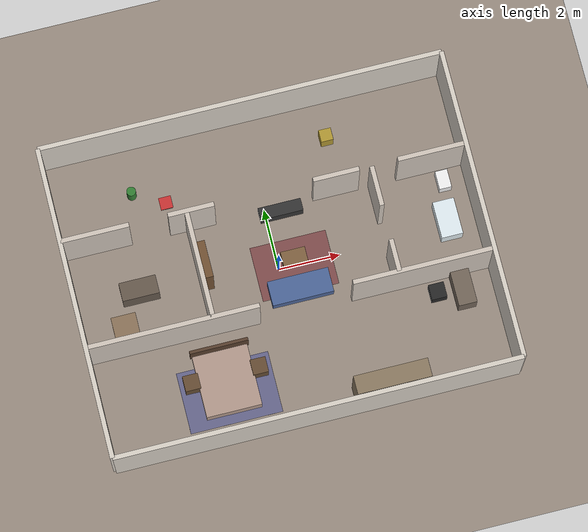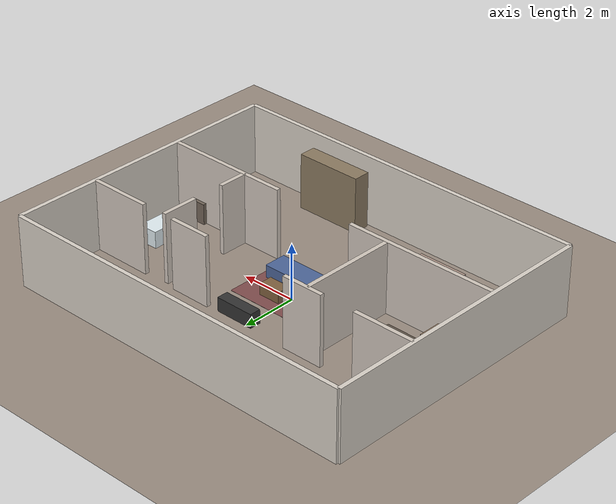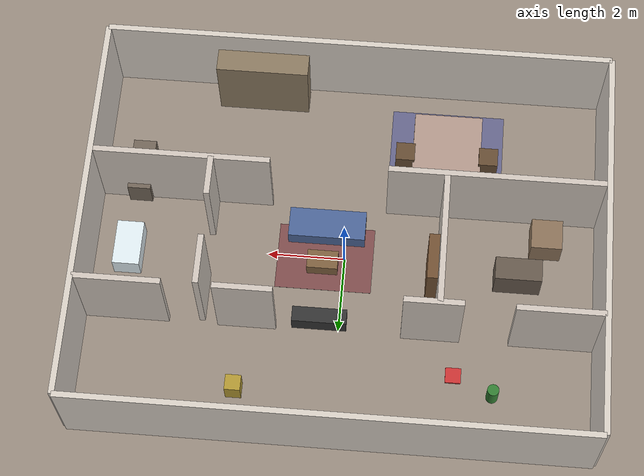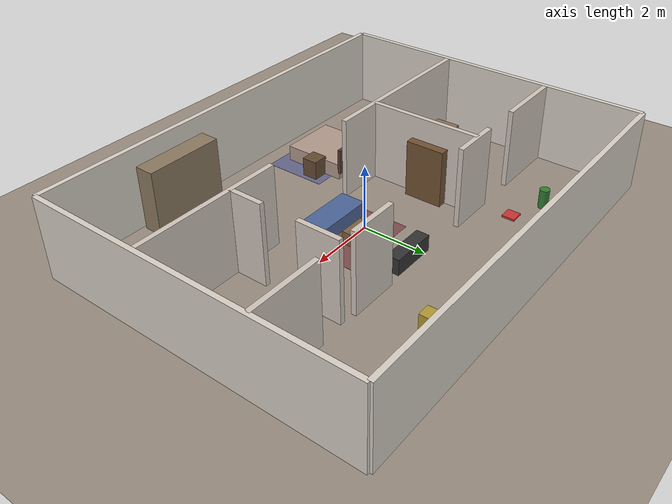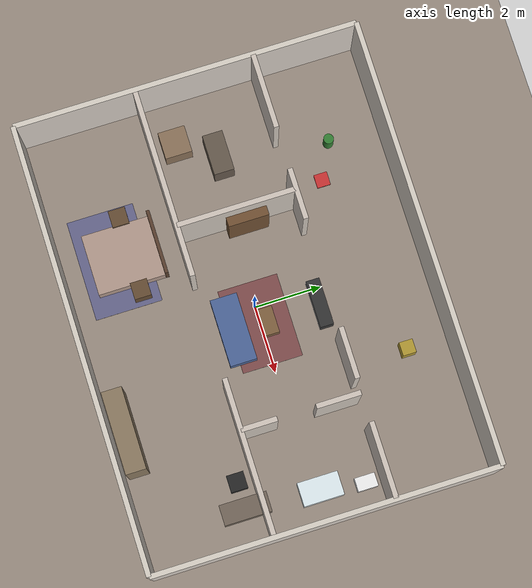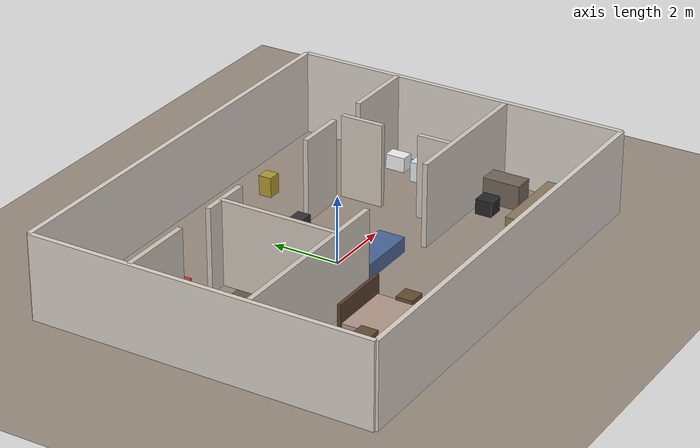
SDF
<?xml version="1.0" ?>
<sdf version="1.8">
  <world name="apartment">

    <!--  PLUGIN OBBLIGATORI GAZEBO HARMONIC     -->
    <plugin filename="gz-sim-physics-system"
            name="gz::sim::systems::Physics"/>
    <plugin filename="gz-sim-scene-broadcaster-system"
            name="gz::sim::systems::SceneBroadcaster"/>
    <plugin filename="gz-sim-user-commands-system"
            name="gz::sim::systems::UserCommands"/>
    <plugin filename="gz-sim-sensors-system"
            name="gz::sim::systems::Sensors">
      <render_engine>ogre2</render_engine>
    </plugin>

    <!--  ILLUMINAZIONE                          -->
    <light name="sun" type="directional">
      <cast_shadows>true</cast_shadows>
      <pose>0 0 15 0 0 0</pose>
      <diffuse>0.9 0.9 0.9 1</diffuse>
      <specular>0.3 0.3 0.3 1</specular>
      <attenuation>
        <range>1000</range>
        <constant>0.9</constant>
        <linear>0.01</linear>
        <quadratic>0.001</quadratic>
      </attenuation>
      <direction>-0.4 0.2 -0.9</direction>
    </light>

    <!-- Luce ambiente soffusa -->
    <light name="ambient_fill" type="directional">
      <cast_shadows>false</cast_shadows>
      <pose>0 0 10 0 0 0</pose>
      <diffuse>0.4 0.4 0.5 1</diffuse>
      <specular>0.0 0.0 0.0 1</specular>
      <direction>0.4 -0.2 -0.9</direction>
    </light>

    <!--  PAVIMENTO                              -->
    <model name="ground_plane">
      <static>true</static>
      <pose>0 0 0 0 0 0</pose>
      <link name="link">
        <collision name="collision">
          <geometry>
            <plane>
              <normal>0 0 1</normal>
              <size>30 30</size>
            </plane>
          </geometry>
        </collision>
        <visual name="visual">
          <cast_shadows>false</cast_shadows>
          <geometry>
            <plane>
              <normal>0 0 1</normal>
              <size>30 30</size>
            </plane>
          </geometry>
          <material>
            <ambient>0.6 0.55 0.5 1</ambient>
            <diffuse>0.6 0.55 0.5 1</diffuse>
            <specular>0.1 0.1 0.1 1</specular>
          </material>
        </visual>
      </link>
    </model>

    <!--  MACRO helper: un muro è un box statico -->
    <!--  pose: cx cy cz 0 0 yaw               -->
    <!--  size: lunghezza spessore altezza       -->

    <!--  MURI PERIMETRALI ESTERNI               -->
    <!--  Appartamento: 13m x 10m               -->
    <!--  Angolo SW: (-6.5, -5.0)               -->
    <!--  Angolo NE: ( 6.5,  5.0)               -->

    <!-- Muro Sud (fondo) -->
    <model name="wall_south">
      <static>true</static>
      <pose>0 -5.075 1.25 0 0 0</pose>
      <link name="link">
        <collision name="col"><geometry><box><size>13.15 0.15 2.5</size></box></geometry></collision>
        <visual name="vis">
          <geometry><box><size>13.15 0.15 2.5</size></box></geometry>
          <material><ambient>0.85 0.82 0.78 1</ambient><diffuse>0.85 0.82 0.78 1</diffuse></material>
        </visual>
      </link>
    </model>

    <!-- Muro Nord (ingresso/corridoio) -->
    <model name="wall_north">
      <static>true</static>
      <pose>0 5.075 1.25 0 0 0</pose>
      <link name="link">
        <collision name="col"><geometry><box><size>13.15 0.15 2.5</size></box></geometry></collision>
        <visual name="vis">
          <geometry><box><size>13.15 0.15 2.5</size></box></geometry>
          <material><ambient>0.85 0.82 0.78 1</ambient><diffuse>0.85 0.82 0.78 1</diffuse></material>
        </visual>
      </link>
    </model>

    <!-- Muro Ovest -->
    <model name="wall_west">
      <static>true</static>
      <pose>-6.575 0 1.25 0 0 0</pose>
      <link name="link">
        <collision name="col"><geometry><box><size>0.15 10.15 2.5</size></box></geometry></collision>
        <visual name="vis">
          <geometry><box><size>0.15 10.15 2.5</size></box></geometry>
          <material><ambient>0.85 0.82 0.78 1</ambient><diffuse>0.85 0.82 0.78 1</diffuse></material>
        </visual>
      </link>
    </model>

    <!-- Muro Est -->
    <model name="wall_east">
      <static>true</static>
      <pose>6.575 0 1.25 0 0 0</pose>
      <link name="link">
        <collision name="col"><geometry><box><size>0.15 10.15 2.5</size></box></geometry></collision>
        <visual name="vis">
          <geometry><box><size>0.15 10.15 2.5</size></box></geometry>
          <material><ambient>0.85 0.82 0.78 1</ambient><diffuse>0.85 0.82 0.78 1</diffuse></material>
        </visual>
      </link>
    </model>

    <!--  MURI INTERNI                           -->
    <!--  Layout (Y positivo = Nord):            -->
    <!--  Y=3.5   corridoio nord                 -->
    <!--  Y=2.0   separatore corridoio/stanze N  -->
    <!--  Y=-1.5  separatore stanze N/camera     -->
    <!--  Y=-5.0  muro sud                       -->

    <!-- Muro corridoio: separa corridoio (nord) dalle stanze -->
    <!-- Corre da X=-6.5 a X=6.5 a Y=2.0                    -->
    <!-- Ha 3 aperture: cucina (X≈-4), salotto (X≈0), bagno (X≈4.5) -->

    <!-- Segmento Ovest corridoio (dal muro ovest all'apertura cucina) -->
    <model name="wall_corridor_W">
      <static>true</static>
      <pose>-5.45 2.0 1.25 0 0 0</pose>
      <link name="link">
        <collision name="col"><geometry><box><size>2.2 0.15 2.5</size></box></geometry></collision>
        <visual name="vis">
          <geometry><box><size>2.2 0.15 2.5</size></box></geometry>
          <material><ambient>0.82 0.78 0.74 1</ambient><diffuse>0.82 0.78 0.74 1</diffuse></material>
        </visual>
      </link>
    </model>

    <!-- Segmento tra apertura cucina e apertura salotto -->
    <model name="wall_corridor_M1">
      <static>true</static>
      <pose>-2.35 2.0 1.25 0 0 0</pose>
      <link name="link">
        <collision name="col"><geometry><box><size>1.5 0.15 2.5</size></box></geometry></collision>
        <visual name="vis">
          <geometry><box><size>1.5 0.15 2.5</size></box></geometry>
          <material><ambient>0.82 0.78 0.74 1</ambient><diffuse>0.82 0.78 0.74 1</diffuse></material>
        </visual>
      </link>
    </model>

    <!-- Segmento tra apertura salotto e apertura bagno -->
    <model name="wall_corridor_M2">
      <static>true</static>
      <pose>2.35 2.0 1.25 0 0 0</pose>
      <link name="link">
        <collision name="col"><geometry><box><size>1.5 0.15 2.5</size></box></geometry></collision>
        <visual name="vis">
          <geometry><box><size>1.5 0.15 2.5</size></box></geometry>
          <material><ambient>0.82 0.78 0.74 1</ambient><diffuse>0.82 0.78 0.74 1</diffuse></material>
        </visual>
      </link>
    </model>

    <!-- Segmento Est corridoio (dopo apertura bagno al muro est) -->
    <model name="wall_corridor_E">
      <static>true</static>
      <pose>5.45 2.0 1.25 0 0 0</pose>
      <link name="link">
        <collision name="col"><geometry><box><size>2.2 0.15 2.5</size></box></geometry></collision>
        <visual name="vis">
          <geometry><box><size>2.2 0.15 2.5</size></box></geometry>
          <material><ambient>0.82 0.78 0.74 1</ambient><diffuse>0.82 0.78 0.74 1</diffuse></material>
        </visual>
      </link>
    </model>

    <!-- Muro divisore cucina/salotto (verticale, da Y=2.0 a Y=-1.5) -->
    <!-- X=-2.5, lunghezza 3.5m -->
    <model name="wall_kitchen_living">
      <static>true</static>
      <pose>-2.5 0.25 1.25 0 0 0</pose>
      <link name="link">
        <collision name="col"><geometry><box><size>0.15 3.5 2.5</size></box></geometry></collision>
        <visual name="vis">
          <geometry><box><size>0.15 3.5 2.5</size></box></geometry>
          <material><ambient>0.82 0.78 0.74 1</ambient><diffuse>0.82 0.78 0.74 1</diffuse></material>
        </visual>
      </link>
    </model>

    <!-- Muro divisore salotto/bagno (verticale, da Y=2.0 a Y=-1.5) -->
    <!-- X=3.5, con apertura interna al salotto -->
    <!-- Segmento nord (da Y=2.0 a Y=0.5) -->
    <model name="wall_living_bath_N">
      <static>true</static>
      <pose>3.5 1.325 1.25 0 0 0</pose>
      <link name="link">
        <collision name="col"><geometry><box><size>0.15 1.3 2.5</size></box></geometry></collision>
        <visual name="vis">
          <geometry><box><size>0.15 1.3 2.5</size></box></geometry>
          <material><ambient>0.82 0.78 0.74 1</ambient><diffuse>0.82 0.78 0.74 1</diffuse></material>
        </visual>
      </link>
    </model>

    <!-- Segmento sud (da Y=-0.3 a Y=-1.5) -->
    <model name="wall_living_bath_S">
      <static>true</static>
      <pose>3.5 -0.975 1.25 0 0 0</pose>
      <link name="link">
        <collision name="col"><geometry><box><size>0.15 1.05 2.5</size></box></geometry></collision>
        <visual name="vis">
          <geometry><box><size>0.15 1.05 2.5</size></box></geometry>
          <material><ambient>0.82 0.78 0.74 1</ambient><diffuse>0.82 0.78 0.74 1</diffuse></material>
        </visual>
      </link>
    </model>

    <!-- Muro separatore stanze nord / camera da letto -->
    <!-- Y=-1.5, da X=-6.5 a X=6.5, con apertura camera (X≈0.5) -->
    <!-- Segmento Ovest -->
    <model name="wall_bedroom_N_W">
      <static>true</static>
      <pose>-3.75 -1.5 1.25 0 0 0</pose>
      <link name="link">
        <collision name="col"><geometry><box><size>5.5 0.15 2.5</size></box></geometry></collision>
        <visual name="vis">
          <geometry><box><size>5.5 0.15 2.5</size></box></geometry>
          <material><ambient>0.82 0.78 0.74 1</ambient><diffuse>0.82 0.78 0.74 1</diffuse></material>
        </visual>
      </link>
    </model>

    <!-- Segmento Est (dopo apertura) -->
    <model name="wall_bedroom_N_E">
      <static>true</static>
      <pose>4.25 -1.5 1.25 0 0 0</pose>
      <link name="link">
        <collision name="col"><geometry><box><size>4.5 0.15 2.5</size></box></geometry></collision>
        <visual name="vis">
          <geometry><box><size>4.5 0.15 2.5</size></box></geometry>
          <material><ambient>0.82 0.78 0.74 1</ambient><diffuse>0.82 0.78 0.74 1</diffuse></material>
        </visual>
      </link>
    </model>

    <!-- Muro nord bagno (chiude il bagno in alto, Y=2.0 già coperto dal muro corridoio) -->
    <!-- Muro est bagno: già coperto dal muro perimetrale Est -->
    <!-- Muro sud bagno (Y=-1.5 già coperto) -->

    <!--  OSTACOLI / ARREDO STILIZZATO           -->

    <!-- CUCINA: isola cucina (box 1.2x0.6x0.9) centrata in X=-4.5, Y=0.3 -->
    <model name="kitchen_island">
      <static>true</static>
      <pose>-4.5 0.3 0.45 0 0 0</pose>
      <link name="link">
        <collision name="col"><geometry><box><size>1.2 0.6 0.9</size></box></geometry></collision>
        <visual name="vis">
          <geometry><box><size>1.2 0.6 0.9</size></box></geometry>
          <material><ambient>0.4 0.35 0.3 1</ambient><diffuse>0.4 0.35 0.3 1</diffuse></material>
        </visual>
      </link>
    </model>

    <!-- Tavolo cucina piccolo (cilindro con box) -->
    <model name="kitchen_table">
      <static>true</static>
      <pose>-5.2 -0.8 0.38 0 0 0</pose>
      <link name="link">
        <collision name="col"><geometry><box><size>0.8 0.8 0.75</size></box></geometry></collision>
        <visual name="vis">
          <geometry><box><size>0.8 0.8 0.75</size></box></geometry>
          <material><ambient>0.55 0.45 0.35 1</ambient><diffuse>0.55 0.45 0.35 1</diffuse></material>
        </visual>
      </link>
    </model>

    <!-- SALOTTO: divano (box 2.0x0.8x0.45) -->
    <model name="sofa">
      <static>true</static>
      <pose>0.5 -0.8 0.225 0 0 0</pose>
      <link name="link">
        <collision name="col"><geometry><box><size>2.0 0.8 0.45</size></box></geometry></collision>
        <visual name="vis">
          <geometry><box><size>2.0 0.8 0.45</size></box></geometry>
          <material><ambient>0.3 0.4 0.6 1</ambient><diffuse>0.3 0.4 0.6 1</diffuse></material>
        </visual>
      </link>
    </model>

    <!-- Tavolino da caffè (box 0.9x0.5x0.4) davanti al divano -->
    <model name="coffee_table">
      <static>true</static>
      <pose>0.55 0.2 0.2 0 0 0</pose>
      <link name="link">
        <collision name="col"><geometry><box><size>0.8 0.5 0.4</size></box></geometry></collision>
        <visual name="vis">
          <geometry><box><size>0.8 0.5 0.4</size></box></geometry>
          <material><ambient>0.5 0.38 0.25 1</ambient><diffuse>0.5 0.38 0.25 1</diffuse></material>
        </visual>
      </link>
    </model>

    <!-- Ostacolo basso: invisibile al lidar (h=3cm), visibile alla camera (h=8cm) -->
    <!-- Posizionato nel corridoio, percorso naturale del robot -->
    <model name="low_obstacle">
      <static>true</static>
      <pose>-3.0 3.0 0.03 0 0 0</pose>
      <link name="link">
        <collision name="col">
          <geometry><box><size>0.4 0.4 0.06</size></box></geometry>
        </collision>
        <visual name="vis">
          <geometry><box><size>0.4 0.4 0.06</size></box></geometry>
          <material>
            <ambient>0.8 0.2 0.2 1</ambient>
            <diffuse>0.8 0.2 0.2 1</diffuse>
          </material>
        </visual>
      </link>
    </model>

    <!-- Mobile TV (appoggiato alla parete salotto/corridoio) -->
    <model name="tv_stand">
      <static>true</static>
      <pose>0.5 1.8 0.25 0 0 0</pose>
      <link name="link">
        <collision name="col"><geometry><box><size>1.4 0.4 0.5</size></box></geometry></collision>
        <visual name="vis">
          <geometry><box><size>1.4 0.4 0.5</size></box></geometry>
          <material><ambient>0.2 0.2 0.2 1</ambient><diffuse>0.2 0.2 0.2 1</diffuse></material>
        </visual>
      </link>
    </model>

    <!-- Libreria (appoggiata alla parete ovest del salotto) -->
    <model name="bookshelf">
      <static>true</static>
      <pose>-2.3 0.5 0.9 0 0 0</pose>
      <link name="link">
        <collision name="col"><geometry><box><size>0.3 1.2 1.8</size></box></geometry></collision>
        <visual name="vis">
          <geometry><box><size>0.3 1.2 1.8</size></box></geometry>
          <material><ambient>0.45 0.32 0.2 1</ambient><diffuse>0.45 0.32 0.2 1</diffuse></material>
        </visual>
      </link>
    </model>

    <!-- BAGNO: sanitari stilizzati -->
    <!-- WC (box piccolo angolo NE bagno) -->
    <model name="toilet">
      <static>true</static>
      <pose>5.8 1.5 0.225 0 0 0</pose>
      <link name="link">
        <collision name="col"><geometry><box><size>0.4 0.6 0.45</size></box></geometry></collision>
        <visual name="vis">
          <geometry><box><size>0.4 0.6 0.45</size></box></geometry>
          <material><ambient>0.95 0.95 0.95 1</ambient><diffuse>0.95 0.95 0.95 1</diffuse></material>
        </visual>
      </link>
    </model>

    <!-- Vasca/doccia (angolo SE bagno) -->
    <model name="bathtub">
      <static>true</static>
      <pose>5.6 0.2 0.3 0 0 0</pose>
      <link name="link">
        <collision name="col"><geometry><box><size>0.7 1.2 0.6</size></box></geometry></collision>
        <visual name="vis">
          <geometry><box><size>0.7 1.2 0.6</size></box></geometry>
          <material><ambient>0.88 0.93 0.95 1</ambient><diffuse>0.88 0.93 0.95 1</diffuse></material>
        </visual>
      </link>
    </model>

    <!-- CAMERA DA LETTO: letto matrimoniale (box 1.8x2.0x0.5) -->
    <model name="bed">
      <static>true</static>
      <pose>-2.5 -3.2 0.25 0 0 0</pose>
      <link name="link">
        <collision name="col"><geometry><box><size>1.8 2.0 0.5</size></box></geometry></collision>
        <visual name="vis">
          <geometry><box><size>1.8 2.0 0.5</size></box></geometry>
          <material><ambient>0.7 0.6 0.55 1</ambient><diffuse>0.7 0.6 0.55 1</diffuse></material>
        </visual>
      </link>
    </model>

    <!-- Testata letto -->
    <model name="bed_headboard">
      <static>true</static>
      <pose>-2.5 -2.15 0.65 0 0 0</pose>
      <link name="link">
        <collision name="col"><geometry><box><size>1.9 0.1 0.8</size></box></geometry></collision>
        <visual name="vis">
          <geometry><box><size>1.9 0.1 0.8</size></box></geometry>
          <material><ambient>0.35 0.25 0.18 1</ambient><diffuse>0.35 0.25 0.18 1</diffuse></material>
        </visual>
      </link>
    </model>

    <!-- Comodino sinistro -->
    <model name="nightstand_L">
      <static>true</static>
      <pose>-3.6 -3.0 0.3 0 0 0</pose>
      <link name="link">
        <collision name="col"><geometry><box><size>0.5 0.5 0.6</size></box></geometry></collision>
        <visual name="vis">
          <geometry><box><size>0.5 0.5 0.6</size></box></geometry>
          <material><ambient>0.4 0.3 0.2 1</ambient><diffuse>0.4 0.3 0.2 1</diffuse></material>
        </visual>
      </link>
    </model>

    <!-- Comodino destro -->
    <model name="nightstand_R">
      <static>true</static>
      <pose>-1.4 -3.0 0.3 0 0 0</pose>
      <link name="link">
        <collision name="col"><geometry><box><size>0.5 0.5 0.6</size></box></geometry></collision>
        <visual name="vis">
          <geometry><box><size>0.5 0.5 0.6</size></box></geometry>
          <material><ambient>0.4 0.3 0.2 1</ambient><diffuse>0.4 0.3 0.2 1</diffuse></material>
        </visual>
      </link>
    </model>

    <!-- Armadio (parete sud camera) -->
    <model name="wardrobe">
      <static>true</static>
      <pose>2.5 -4.6 1.0 0 0 0</pose>
      <link name="link">
        <collision name="col"><geometry><box><size>2.4 0.6 2.0</size></box></geometry></collision>
        <visual name="vis">
          <geometry><box><size>2.4 0.6 2.0</size></box></geometry>
          <material><ambient>0.55 0.48 0.38 1</ambient><diffuse>0.55 0.48 0.38 1</diffuse></material>
        </visual>
      </link>
    </model>

    <!-- Scrivania (angolo NE camera) -->
    <model name="desk">
      <static>true</static>
      <pose>5.5 -2.0 0.375 0 0 0</pose>
      <link name="link">
        <collision name="col"><geometry><box><size>0.6 1.4 0.75</size></box></geometry></collision>
        <visual name="vis">
          <geometry><box><size>0.6 1.4 0.75</size></box></geometry>
          <material><ambient>0.45 0.4 0.35 1</ambient><diffuse>0.45 0.4 0.35 1</diffuse></material>
        </visual>
      </link>
    </model>

    <!-- Sedia scrivania -->
    <model name="desk_chair">
      <static>true</static>
      <pose>4.7 -2.0 0.225 0 0 0</pose>
      <link name="link">
        <collision name="col"><geometry><box><size>0.5 0.5 0.45</size></box></geometry></collision>
        <visual name="vis">
          <geometry><box><size>0.5 0.5 0.45</size></box></geometry>
          <material><ambient>0.15 0.15 0.15 1</ambient><diffuse>0.15 0.15 0.15 1</diffuse></material>
        </visual>
      </link>
    </model>

    <!--  OSTACOLI MOBILI / SPARSI               -->
    <!--  (oggetti che il robot deve evitare)    -->

    <!-- Vaso da fiori nel corridoio -->
    <model name="plant_pot_corridor">
      <static>true</static>
      <pose>-4.0 3.5 0.3 0 0 0</pose>
      <link name="link">
        <collision name="col">
          <geometry><cylinder><radius>0.15</radius><length>0.6</length></cylinder></geometry>
        </collision>
        <visual name="vis">
          <geometry><cylinder><radius>0.15</radius><length>0.6</length></cylinder></geometry>
          <material><ambient>0.2 0.5 0.2 1</ambient><diffuse>0.2 0.5 0.2 1</diffuse></material>
        </visual>
      </link>
    </model>

    <!-- Scatole impilate corridoio (ostacolo stretto) -->
    <model name="boxes_stack">
      <static>true</static>
      <pose>2.5 3.8 0.3 0 0 0</pose>
      <link name="link">
        <collision name="col"><geometry><box><size>0.4 0.4 0.6</size></box></geometry></collision>
        <visual name="vis">
          <geometry><box><size>0.4 0.4 0.6</size></box></geometry>
          <material><ambient>0.7 0.6 0.2 1</ambient><diffuse>0.7 0.6 0.2 1</diffuse></material>
        </visual>
      </link>
    </model>

    <!-- Tappeto (solo visivo, nessuna collisione) -->
    <model name="rug_living">
      <static>true</static>
      <pose>0.5 0.0 0.002 0 0 0</pose>
      <link name="link">
        <visual name="vis">
          <geometry><box><size>2.5 1.8 0.004</size></box></geometry>
          <material><ambient>0.5 0.3 0.3 1</ambient><diffuse>0.5 0.3 0.3 1</diffuse></material>
        </visual>
      </link>
    </model>

    <!-- Tappeto camera -->
    <model name="rug_bedroom">
      <static>true</static>
      <pose>-2.5 -3.5 0.002 0 0 0</pose>
      <link name="link">
        <visual name="vis">
          <geometry><box><size>3.0 2.0 0.004</size></box></geometry>
          <material><ambient>0.4 0.4 0.55 1</ambient><diffuse>0.4 0.4 0.55 1</diffuse></material>
        </visual>
      </link>
    </model>

  </world>
</sdf>
